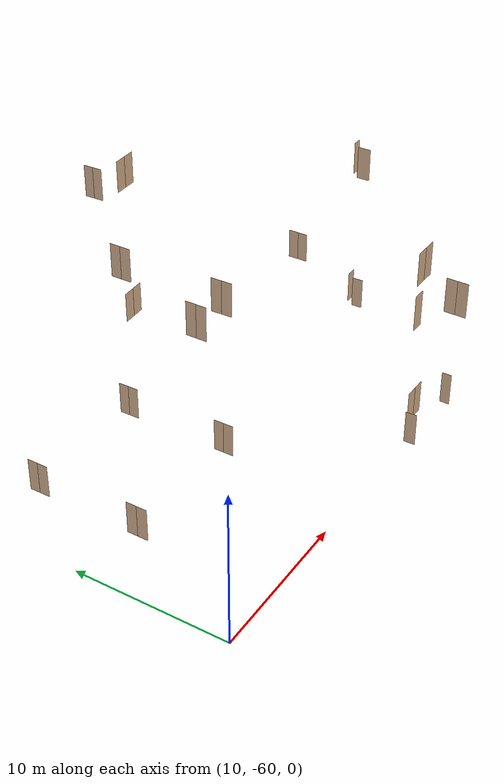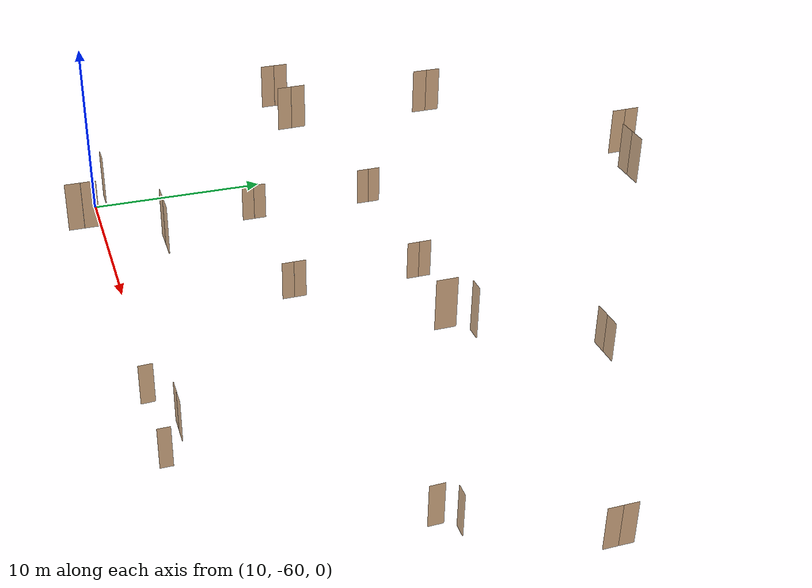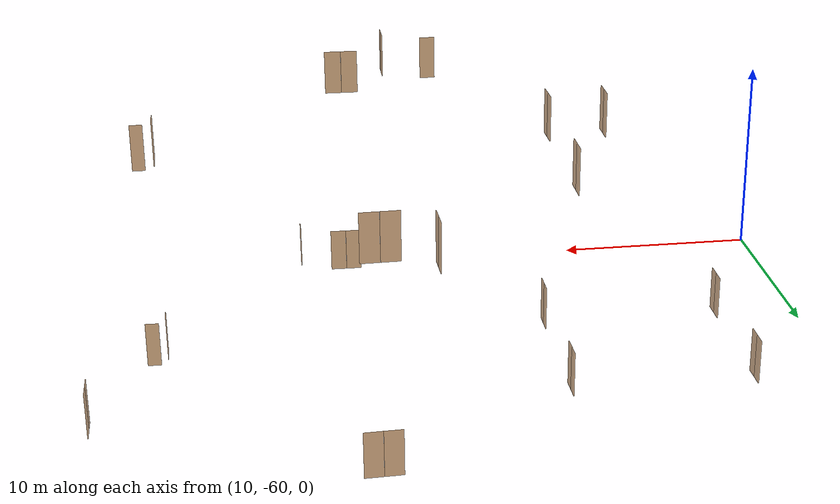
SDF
<sdf version="1.7">
 <world name="sim_world">
  <model name="door14">
   <pose>29.74922429639038 -60.3268375047855 0.0 0 0 1.6107948883778511</pose>
   <link name="right">
    <pose>0 0 1.11 0 0 0</pose>
    <visual name="right_visual">
     <geometry><box><size>0.7125942527000033 0.03 2.2</size></box></geometry>
     <material>
      <ambient>0.5 0.25 0 0.6</ambient>
      <diffuse>0.5 0.25 0 0.6</diffuse>
      <pbr><metal><metalness>0.0</metalness></metal></pbr>
     </material>
    </visual>
    <collision name="right_collision">
     <geometry><box><size>0.7125942527000033 0.03 2.2</size></box></geometry>
     <surface><contact><collide_bitmask>0x02</collide_bitmask></contact></surface>
    </collision>
    <inertial>
     <mass>50.0</mass>
     <inertia><ixx>20.17041666666667</ixx><iyy>22.282460704087825</iyy><izz>2.119544037421151</izz></inertia>
    </inertial>
   </link>
   <joint name="right_joint" type="revolute">
    <parent>world</parent>
    <child>right</child>
    <axis><xyz>0 0 1</xyz><limit><lower>0</lower><upper>1.57</upper></limit></axis>
    <pose>0.36129712635000166 0 0 0 0 0</pose>
   </joint>
   <plugin name="register_component" filename="libregister_component.so">
    <component name="Door">
     <v_max_door>0.5</v_max_door>
     <a_max_door>0.3</a_max_door>
     <a_nom_door>0.15</a_nom_door>
     <dx_min_door>0.01</dx_min_door>
     <f_max_door>500.0</f_max_door>
     <ros_interface>true</ros_interface>
     <door name="door14" type="SwingDoor" left_joint_name="empty_joint" right_joint_name="right_joint"/>
    </component>
   </plugin>
  </model>
  <model name="door17_end">
   <pose>32.24229599247289 -59.333746953176124 0.0 0 0 3.129395427821512</pose>
   <link name="right">
    <pose>0.40445562780894295 0 1.11 0 0 0</pose>
    <visual name="right_visual">
     <geometry><box><size>0.7989112556178859 0.03 2.2</size></box></geometry>
     <material>
      <ambient>0.5 0.25 0 0.6</ambient>
      <diffuse>0.5 0.25 0 0.6</diffuse>
      <pbr><metal><metalness>0.0</metalness></metal></pbr>
     </material>
    </visual>
    <collision name="right_collision">
     <geometry><box><size>0.7989112556178859 0.03 2.2</size></box></geometry>
     <surface><contact><collide_bitmask>0x02</collide_bitmask></contact></surface>
    </collision>
    <inertial>
     <mass>50.0</mass>
     <inertia><ixx>20.17041666666667</ixx><iyy>22.826079976470616</iyy><izz>2.663163309803946</izz></inertia>
    </inertial>
   </link>
   <joint name="right_joint" type="revolute">
    <parent>world</parent>
    <child>right</child>
    <axis><xyz>0 0 1</xyz><limit><lower>0</lower><upper>1.57</upper></limit></axis>
    <pose>0.40445562780894295 0 0 0 0 0</pose>
   </joint>
   <link name="left">
    <pose>-0.40445562780894295 0 1.11 0 0 0</pose>
    <visual name="left_visual">
     <geometry><box><size>0.7989112556178859 0.03 2.2</size></box></geometry>
     <material>
      <ambient>0.5 0.25 0 0.6</ambient>
      <diffuse>0.5 0.25 0 0.6</diffuse>
      <pbr><metal><metalness>0.0</metalness></metal></pbr>
     </material>
    </visual>
    <collision name="left_collision">
     <geometry><box><size>0.7989112556178859 0.03 2.2</size></box></geometry>
     <surface><contact><collide_bitmask>0x02</collide_bitmask></contact></surface>
    </collision>
    <inertial>
     <mass>50.0</mass>
     <inertia><ixx>20.17041666666667</ixx><iyy>22.826079976470616</iyy><izz>2.663163309803946</izz></inertia>
    </inertial>
   </link>
   <joint name="left_joint" type="revolute">
    <parent>world</parent>
    <child>left</child>
    <axis><xyz>0 0 1</xyz><limit><lower>-1.57</lower><upper>0</upper></limit></axis>
    <pose>-0.40445562780894295 0 0 0 0 0</pose>
   </joint>
   <plugin name="register_component" filename="libregister_component.so">
    <component name="Door">
     <v_max_door>0.5</v_max_door>
     <a_max_door>0.3</a_max_door>
     <a_nom_door>0.15</a_nom_door>
     <dx_min_door>0.01</dx_min_door>
     <f_max_door>500.0</f_max_door>
     <ros_interface>true</ros_interface>
     <door name="door17_end" type="DoubleSwingDoor" left_joint_name="left_joint" right_joint_name="right_joint"/>
    </component>
   </plugin>
  </model>
  <model name="door15">
   <pose>34.61065496626591 -60.36628744755054 0.0 0 0 1.570095261290011</pose>
   <link name="right">
    <pose>0 0 1.11 0 0 0</pose>
    <visual name="right_visual">
     <geometry><box><size>0.6306612393383593 0.03 2.2</size></box></geometry>
     <material>
      <ambient>0.5 0.25 0 0.6</ambient>
      <diffuse>0.5 0.25 0 0.6</diffuse>
      <pbr><metal><metalness>0.0</metalness></metal></pbr>
     </material>
    </visual>
    <collision name="right_collision">
     <geometry><box><size>0.6306612393383593 0.03 2.2</size></box></geometry>
     <surface><contact><collide_bitmask>0x02</collide_bitmask></contact></surface>
    </collision>
    <inertial>
     <mass>50.0</mass>
     <inertia><ixx>20.17041666666667</ixx><iyy>21.82388999501582</iyy><izz>1.6609733283491472</izz></inertia>
    </inertial>
   </link>
   <joint name="right_joint" type="revolute">
    <parent>world</parent>
    <child>right</child>
    <axis><xyz>0 0 -1</xyz><limit><lower>0</lower><upper>1.57</upper></limit></axis>
    <pose>0.32033061966917964 0 0 0 0 0</pose>
   </joint>
   <plugin name="register_component" filename="libregister_component.so">
    <component name="Door">
     <v_max_door>0.5</v_max_door>
     <a_max_door>0.3</a_max_door>
     <a_nom_door>0.15</a_nom_door>
     <dx_min_door>0.01</dx_min_door>
     <f_max_door>500.0</f_max_door>
     <ros_interface>true</ros_interface>
     <door name="door15" type="SwingDoor" left_joint_name="empty_joint" right_joint_name="right_joint"/>
    </component>
   </plugin>
  </model>
  <model name="door20">
   <pose>22.9317950981023 -44.21380406983128 0.0 0 0 1.5841898704715496</pose>
   <link name="right">
    <pose>0.33703155230400345 0 1.11 0 0 0</pose>
    <visual name="right_visual">
     <geometry><box><size>0.6640631046080069 0.03 2.2</size></box></geometry>
     <material>
      <ambient>0.5 0.25 0 0.6</ambient>
      <diffuse>0.5 0.25 0 0.6</diffuse>
      <pbr><metal><metalness>0.0</metalness></metal></pbr>
     </material>
    </visual>
    <collision name="right_collision">
     <geometry><box><size>0.6640631046080069 0.03 2.2</size></box></geometry>
     <surface><contact><collide_bitmask>0x02</collide_bitmask></contact></surface>
    </collision>
    <inertial>
     <mass>50.0</mass>
     <inertia><ixx>20.17041666666667</ixx><iyy>22.004082528756776</iyy><izz>1.841165862090103</izz></inertia>
    </inertial>
   </link>
   <joint name="right_joint" type="revolute">
    <parent>world</parent>
    <child>right</child>
    <axis><xyz>0 0 -1</xyz><limit><lower>0</lower><upper>1.57</upper></limit></axis>
    <pose>0.33703155230400345 0 0 0 0 0</pose>
   </joint>
   <link name="left">
    <pose>-0.33703155230400345 0 1.11 0 0 0</pose>
    <visual name="left_visual">
     <geometry><box><size>0.6640631046080069 0.03 2.2</size></box></geometry>
     <material>
      <ambient>0.5 0.25 0 0.6</ambient>
      <diffuse>0.5 0.25 0 0.6</diffuse>
      <pbr><metal><metalness>0.0</metalness></metal></pbr>
     </material>
    </visual>
    <collision name="left_collision">
     <geometry><box><size>0.6640631046080069 0.03 2.2</size></box></geometry>
     <surface><contact><collide_bitmask>0x02</collide_bitmask></contact></surface>
    </collision>
    <inertial>
     <mass>50.0</mass>
     <inertia><ixx>20.17041666666667</ixx><iyy>22.004082528756776</iyy><izz>1.841165862090103</izz></inertia>
    </inertial>
   </link>
   <joint name="left_joint" type="revolute">
    <parent>world</parent>
    <child>left</child>
    <axis><xyz>0 0 -1</xyz><limit><lower>-1.57</lower><upper>0</upper></limit></axis>
    <pose>-0.33703155230400345 0 0 0 0 0</pose>
   </joint>
   <plugin name="register_component" filename="libregister_component.so">
    <component name="Door">
     <v_max_door>0.5</v_max_door>
     <a_max_door>0.3</a_max_door>
     <a_nom_door>0.15</a_nom_door>
     <dx_min_door>0.01</dx_min_door>
     <f_max_door>500.0</f_max_door>
     <ros_interface>true</ros_interface>
     <door name="door20" type="DoubleSwingDoor" left_joint_name="left_joint" right_joint_name="right_joint"/>
    </component>
   </plugin>
  </model>
  <model name="door21_end">
   <pose>22.930657262940954 -51.23370804077758 0.0 0 0 1.5724148541161644</pose>
   <link name="right">
    <pose>0.3283781605271934 0 1.11 0 0 0</pose>
    <visual name="right_visual">
     <geometry><box><size>0.6467563210543867 0.03 2.2</size></box></geometry>
     <material>
      <ambient>0.5 0.25 0 0.6</ambient>
      <diffuse>0.5 0.25 0 0.6</diffuse>
      <pbr><metal><metalness>0.0</metalness></metal></pbr>
     </material>
    </visual>
    <collision name="right_collision">
     <geometry><box><size>0.6467563210543867 0.03 2.2</size></box></geometry>
     <surface><contact><collide_bitmask>0x02</collide_bitmask></contact></surface>
    </collision>
    <inertial>
     <mass>50.0</mass>
     <inertia><ixx>20.17041666666667</ixx><iyy>21.909557245099194</iyy><izz>1.746640578432521</izz></inertia>
    </inertial>
   </link>
   <joint name="right_joint" type="revolute">
    <parent>world</parent>
    <child>right</child>
    <axis><xyz>0 0 -1</xyz><limit><lower>0</lower><upper>1.57</upper></limit></axis>
    <pose>0.3283781605271934 0 0 0 0 0</pose>
   </joint>
   <link name="left">
    <pose>-0.3283781605271934 0 1.11 0 0 0</pose>
    <visual name="left_visual">
     <geometry><box><size>0.6467563210543867 0.03 2.2</size></box></geometry>
     <material>
      <ambient>0.5 0.25 0 0.6</ambient>
      <diffuse>0.5 0.25 0 0.6</diffuse>
      <pbr><metal><metalness>0.0</metalness></metal></pbr>
     </material>
    </visual>
    <collision name="left_collision">
     <geometry><box><size>0.6467563210543867 0.03 2.2</size></box></geometry>
     <surface><contact><collide_bitmask>0x02</collide_bitmask></contact></surface>
    </collision>
    <inertial>
     <mass>50.0</mass>
     <inertia><ixx>20.17041666666667</ixx><iyy>21.909557245099194</iyy><izz>1.746640578432521</izz></inertia>
    </inertial>
   </link>
   <joint name="left_joint" type="revolute">
    <parent>world</parent>
    <child>left</child>
    <axis><xyz>0 0 -1</xyz><limit><lower>-1.57</lower><upper>0</upper></limit></axis>
    <pose>-0.3283781605271934 0 0 0 0 0</pose>
   </joint>
   <plugin name="register_component" filename="libregister_component.so">
    <component name="Door">
     <v_max_door>0.5</v_max_door>
     <a_max_door>0.3</a_max_door>
     <a_nom_door>0.15</a_nom_door>
     <dx_min_door>0.01</dx_min_door>
     <f_max_door>500.0</f_max_door>
     <ros_interface>true</ros_interface>
     <door name="door21_end" type="DoubleSwingDoor" left_joint_name="left_joint" right_joint_name="right_joint"/>
    </component>
   </plugin>
  </model>
  <model name="door19">
   <pose>14.084737459250439 -51.22706068799289 0.0 0 0 1.5709468288255377</pose>
   <link name="right">
    <pose>0.3481700775569965 0 1.11 0 0 0</pose>
    <visual name="right_visual">
     <geometry><box><size>0.686340155113993 0.03 2.2</size></box></geometry>
     <material>
      <ambient>0.5 0.25 0 0.6</ambient>
      <diffuse>0.5 0.25 0 0.6</diffuse>
      <pbr><metal><metalness>0.0</metalness></metal></pbr>
     </material>
    </visual>
    <collision name="right_collision">
     <geometry><box><size>0.686340155113993 0.03 2.2</size></box></geometry>
     <surface><contact><collide_bitmask>0x02</collide_bitmask></contact></surface>
    </collision>
    <inertial>
     <mass>50.0</mass>
     <inertia><ixx>20.17041666666667</ixx><iyy>22.129428368841253</iyy><izz>1.9665117021745837</izz></inertia>
    </inertial>
   </link>
   <joint name="right_joint" type="revolute">
    <parent>world</parent>
    <child>right</child>
    <axis><xyz>0 0 -1</xyz><limit><lower>0</lower><upper>1.57</upper></limit></axis>
    <pose>0.3481700775569965 0 0 0 0 0</pose>
   </joint>
   <link name="left">
    <pose>-0.3481700775569965 0 1.11 0 0 0</pose>
    <visual name="left_visual">
     <geometry><box><size>0.686340155113993 0.03 2.2</size></box></geometry>
     <material>
      <ambient>0.5 0.25 0 0.6</ambient>
      <diffuse>0.5 0.25 0 0.6</diffuse>
      <pbr><metal><metalness>0.0</metalness></metal></pbr>
     </material>
    </visual>
    <collision name="left_collision">
     <geometry><box><size>0.686340155113993 0.03 2.2</size></box></geometry>
     <surface><contact><collide_bitmask>0x02</collide_bitmask></contact></surface>
    </collision>
    <inertial>
     <mass>50.0</mass>
     <inertia><ixx>20.17041666666667</ixx><iyy>22.129428368841253</iyy><izz>1.9665117021745837</izz></inertia>
    </inertial>
   </link>
   <joint name="left_joint" type="revolute">
    <parent>world</parent>
    <child>left</child>
    <axis><xyz>0 0 -1</xyz><limit><lower>-1.57</lower><upper>0</upper></limit></axis>
    <pose>-0.3481700775569965 0 0 0 0 0</pose>
   </joint>
   <plugin name="register_component" filename="libregister_component.so">
    <component name="Door">
     <v_max_door>0.5</v_max_door>
     <a_max_door>0.3</a_max_door>
     <a_nom_door>0.15</a_nom_door>
     <dx_min_door>0.01</dx_min_door>
     <f_max_door>500.0</f_max_door>
     <ros_interface>true</ros_interface>
     <door name="door19" type="DoubleSwingDoor" left_joint_name="left_joint" right_joint_name="right_joint"/>
    </component>
   </plugin>
  </model>
  <model name="door18">
   <pose>14.096969187234894 -44.20467144550996 0.0 0 0 1.5759858748518007</pose>
   <link name="right">
    <pose>0.34330895403409933 0 1.11 0 0 0</pose>
    <visual name="right_visual">
     <geometry><box><size>0.6766179080681987 0.03 2.2</size></box></geometry>
     <material>
      <ambient>0.5 0.25 0 0.6</ambient>
      <diffuse>0.5 0.25 0 0.6</diffuse>
      <pbr><metal><metalness>0.0</metalness></metal></pbr>
     </material>
    </visual>
    <collision name="right_collision">
     <geometry><box><size>0.6766179080681987 0.03 2.2</size></box></geometry>
     <surface><contact><collide_bitmask>0x02</collide_bitmask></contact></surface>
    </collision>
    <inertial>
     <mass>50.0</mass>
     <inertia><ixx>20.17041666666667</ixx><iyy>22.074215806327445</iyy><izz>1.9112991396607724</izz></inertia>
    </inertial>
   </link>
   <joint name="right_joint" type="revolute">
    <parent>world</parent>
    <child>right</child>
    <axis><xyz>0 0 -1</xyz><limit><lower>0</lower><upper>1.57</upper></limit></axis>
    <pose>0.34330895403409933 0 0 0 0 0</pose>
   </joint>
   <link name="left">
    <pose>-0.34330895403409933 0 1.11 0 0 0</pose>
    <visual name="left_visual">
     <geometry><box><size>0.6766179080681987 0.03 2.2</size></box></geometry>
     <material>
      <ambient>0.5 0.25 0 0.6</ambient>
      <diffuse>0.5 0.25 0 0.6</diffuse>
      <pbr><metal><metalness>0.0</metalness></metal></pbr>
     </material>
    </visual>
    <collision name="left_collision">
     <geometry><box><size>0.6766179080681987 0.03 2.2</size></box></geometry>
     <surface><contact><collide_bitmask>0x02</collide_bitmask></contact></surface>
    </collision>
    <inertial>
     <mass>50.0</mass>
     <inertia><ixx>20.17041666666667</ixx><iyy>22.074215806327445</iyy><izz>1.9112991396607724</izz></inertia>
    </inertial>
   </link>
   <joint name="left_joint" type="revolute">
    <parent>world</parent>
    <child>left</child>
    <axis><xyz>0 0 -1</xyz><limit><lower>-1.57</lower><upper>0</upper></limit></axis>
    <pose>-0.34330895403409933 0 0 0 0 0</pose>
   </joint>
   <plugin name="register_component" filename="libregister_component.so">
    <component name="Door">
     <v_max_door>0.5</v_max_door>
     <a_max_door>0.3</a_max_door>
     <a_nom_door>0.15</a_nom_door>
     <dx_min_door>0.01</dx_min_door>
     <f_max_door>500.0</f_max_door>
     <ros_interface>true</ros_interface>
     <door name="door18" type="DoubleSwingDoor" left_joint_name="left_joint" right_joint_name="right_joint"/>
    </component>
   </plugin>
  </model>
  <model name="door22">
   <pose>42.20187196032947 -49.40029627948463 0.0 0 0 3.127897356564702</pose>
   <link name="right">
    <pose>0 0 1.11 0 0 0</pose>
    <visual name="right_visual">
     <geometry><box><size>0.6524917930102326 0.03 2.2</size></box></geometry>
     <material>
      <ambient>0.5 0.25 0 0.6</ambient>
      <diffuse>0.5 0.25 0 0.6</diffuse>
      <pbr><metal><metalness>0.0</metalness></metal></pbr>
     </material>
    </visual>
    <collision name="right_collision">
     <geometry><box><size>0.6524917930102326 0.03 2.2</size></box></geometry>
     <surface><contact><collide_bitmask>0x02</collide_bitmask></contact></surface>
    </collision>
    <inertial>
     <mass>50.0</mass>
     <inertia><ixx>20.17041666666667</ixx><iyy>21.940606416440456</iyy><izz>1.7776897497737847</izz></inertia>
    </inertial>
   </link>
   <joint name="right_joint" type="revolute">
    <parent>world</parent>
    <child>right</child>
    <axis><xyz>0 0 1</xyz><limit><lower>0</lower><upper>1.57</upper></limit></axis>
    <pose>0.3312458965051163 0 0 0 0 0</pose>
   </joint>
   <plugin name="register_component" filename="libregister_component.so">
    <component name="Door">
     <v_max_door>0.5</v_max_door>
     <a_max_door>0.3</a_max_door>
     <a_nom_door>0.15</a_nom_door>
     <dx_min_door>0.01</dx_min_door>
     <f_max_door>500.0</f_max_door>
     <ros_interface>true</ros_interface>
     <door name="door22" type="SwingDoor" left_joint_name="empty_joint" right_joint_name="right_joint"/>
    </component>
   </plugin>
  </model>
  <model name="door23_end">
   <pose>41.56986441426364 -50.243402191010446 0.0 0 0 1.5988323440812358</pose>
   <link name="right">
    <pose>0 0 1.11 0 0 0</pose>
    <visual name="right_visual">
     <geometry><box><size>0.7387801931299594 0.03 2.2</size></box></geometry>
     <material>
      <ambient>0.5 0.25 0 0.6</ambient>
      <diffuse>0.5 0.25 0 0.6</diffuse>
      <pbr><metal><metalness>0.0</metalness></metal></pbr>
     </material>
    </visual>
    <collision name="right_collision">
     <geometry><box><size>0.7387801931299594 0.03 2.2</size></box></geometry>
     <surface><contact><collide_bitmask>0x02</collide_bitmask></contact></surface>
    </collision>
    <inertial>
     <mass>50.0</mass>
     <inertia><ixx>20.17041666666667</ixx><iyy>22.44081739067142</iyy><izz>2.2779007240047506</izz></inertia>
    </inertial>
   </link>
   <joint name="right_joint" type="revolute">
    <parent>world</parent>
    <child>right</child>
    <axis><xyz>0 0 1</xyz><limit><lower>0</lower><upper>1.57</upper></limit></axis>
    <pose>0.3743900965649797 0 0 0 0 0</pose>
   </joint>
   <plugin name="register_component" filename="libregister_component.so">
    <component name="Door">
     <v_max_door>0.5</v_max_door>
     <a_max_door>0.3</a_max_door>
     <a_nom_door>0.15</a_nom_door>
     <dx_min_door>0.01</dx_min_door>
     <f_max_door>500.0</f_max_door>
     <ros_interface>true</ros_interface>
     <door name="door23_end" type="SwingDoor" left_joint_name="empty_joint" right_joint_name="right_joint"/>
    </component>
   </plugin>
  </model>
  <model name="door34_end">
   <pose>32.27717962307727 -37.76471906199796 0.0 0 0 -3.1073071053219796</pose>
   <link name="right">
    <pose>0.4385039004640139 0 1.11 0 0 0</pose>
    <visual name="right_visual">
     <geometry><box><size>0.8670078009280278 0.03 2.2</size></box></geometry>
     <material>
      <ambient>0.5 0.25 0 0.6</ambient>
      <diffuse>0.5 0.25 0 0.6</diffuse>
      <pbr><metal><metalness>0.0</metalness></metal></pbr>
     </material>
    </visual>
    <collision name="right_collision">
     <geometry><box><size>0.8670078009280278 0.03 2.2</size></box></geometry>
     <surface><contact><collide_bitmask>0x02</collide_bitmask></contact></surface>
    </collision>
    <inertial>
     <mass>50.0</mass>
     <inertia><ixx>20.17041666666667</ixx><iyy>23.29876052862523</iyy><izz>3.135843861958561</izz></inertia>
    </inertial>
   </link>
   <joint name="right_joint" type="revolute">
    <parent>world</parent>
    <child>right</child>
    <axis><xyz>0 0 -1</xyz><limit><lower>0</lower><upper>1.57</upper></limit></axis>
    <pose>0.4385039004640139 0 0 0 0 0</pose>
   </joint>
   <link name="left">
    <pose>-0.4385039004640139 0 1.11 0 0 0</pose>
    <visual name="left_visual">
     <geometry><box><size>0.8670078009280278 0.03 2.2</size></box></geometry>
     <material>
      <ambient>0.5 0.25 0 0.6</ambient>
      <diffuse>0.5 0.25 0 0.6</diffuse>
      <pbr><metal><metalness>0.0</metalness></metal></pbr>
     </material>
    </visual>
    <collision name="left_collision">
     <geometry><box><size>0.8670078009280278 0.03 2.2</size></box></geometry>
     <surface><contact><collide_bitmask>0x02</collide_bitmask></contact></surface>
    </collision>
    <inertial>
     <mass>50.0</mass>
     <inertia><ixx>20.17041666666667</ixx><iyy>23.29876052862523</iyy><izz>3.135843861958561</izz></inertia>
    </inertial>
   </link>
   <joint name="left_joint" type="revolute">
    <parent>world</parent>
    <child>left</child>
    <axis><xyz>0 0 -1</xyz><limit><lower>-1.57</lower><upper>0</upper></limit></axis>
    <pose>-0.4385039004640139 0 0 0 0 0</pose>
   </joint>
   <plugin name="register_component" filename="libregister_component.so">
    <component name="Door">
     <v_max_door>0.5</v_max_door>
     <a_max_door>0.3</a_max_door>
     <a_nom_door>0.15</a_nom_door>
     <dx_min_door>0.01</dx_min_door>
     <f_max_door>500.0</f_max_door>
     <ros_interface>true</ros_interface>
     <door name="door34_end" type="DoubleSwingDoor" left_joint_name="left_joint" right_joint_name="right_joint"/>
    </component>
   </plugin>
  </model>
  <model name="door35">
   <pose>44.947632891322165 -43.476876144677256 0.0 0 0 1.5807739370104015</pose>
   <link name="right">
    <pose>0.3631297209872621 0 1.11 0 0 0</pose>
    <visual name="right_visual">
     <geometry><box><size>0.7162594419745242 0.03 2.2</size></box></geometry>
     <material>
      <ambient>0.5 0.25 0 0.6</ambient>
      <diffuse>0.5 0.25 0 0.6</diffuse>
      <pbr><metal><metalness>0.0</metalness></metal></pbr>
     </material>
    </visual>
    <collision name="right_collision">
     <geometry><box><size>0.7162594419745242 0.03 2.2</size></box></geometry>
     <surface><contact><collide_bitmask>0x02</collide_bitmask></contact></surface>
    </collision>
    <inertial>
     <mass>50.0</mass>
     <inertia><ixx>20.17041666666667</ixx><iyy>22.304281617573576</iyy><izz>2.1413649509069037</izz></inertia>
    </inertial>
   </link>
   <joint name="right_joint" type="revolute">
    <parent>world</parent>
    <child>right</child>
    <axis><xyz>0 0 1</xyz><limit><lower>0</lower><upper>1.57</upper></limit></axis>
    <pose>0.3631297209872621 0 0 0 0 0</pose>
   </joint>
   <link name="left">
    <pose>-0.3631297209872621 0 1.11 0 0 0</pose>
    <visual name="left_visual">
     <geometry><box><size>0.7162594419745242 0.03 2.2</size></box></geometry>
     <material>
      <ambient>0.5 0.25 0 0.6</ambient>
      <diffuse>0.5 0.25 0 0.6</diffuse>
      <pbr><metal><metalness>0.0</metalness></metal></pbr>
     </material>
    </visual>
    <collision name="left_collision">
     <geometry><box><size>0.7162594419745242 0.03 2.2</size></box></geometry>
     <surface><contact><collide_bitmask>0x02</collide_bitmask></contact></surface>
    </collision>
    <inertial>
     <mass>50.0</mass>
     <inertia><ixx>20.17041666666667</ixx><iyy>22.304281617573576</iyy><izz>2.1413649509069037</izz></inertia>
    </inertial>
   </link>
   <joint name="left_joint" type="revolute">
    <parent>world</parent>
    <child>left</child>
    <axis><xyz>0 0 1</xyz><limit><lower>-1.57</lower><upper>0</upper></limit></axis>
    <pose>-0.3631297209872621 0 0 0 0 0</pose>
   </joint>
   <plugin name="register_component" filename="libregister_component.so">
    <component name="Door">
     <v_max_door>0.5</v_max_door>
     <a_max_door>0.3</a_max_door>
     <a_nom_door>0.15</a_nom_door>
     <dx_min_door>0.01</dx_min_door>
     <f_max_door>500.0</f_max_door>
     <ros_interface>true</ros_interface>
     <door name="door35" type="DoubleSwingDoor" left_joint_name="left_joint" right_joint_name="right_joint"/>
    </component>
   </plugin>
  </model>
  <model name="N1_door9">
   <pose>29.870763947895952 -62.389399594153176 10.0 0 0 1.5673760977251567</pose>
   <link name="right">
    <pose>0.33577057026473905 0 1.11 0 0 0</pose>
    <visual name="right_visual">
     <geometry><box><size>0.6615411405294781 0.03 2.2</size></box></geometry>
     <material>
      <ambient>0.5 0.25 0 0.6</ambient>
      <diffuse>0.5 0.25 0 0.6</diffuse>
      <pbr><metal><metalness>0.0</metalness></metal></pbr>
     </material>
    </visual>
    <collision name="right_collision">
     <geometry><box><size>0.6615411405294781 0.03 2.2</size></box></geometry>
     <surface><contact><collide_bitmask>0x02</collide_bitmask></contact></surface>
    </collision>
    <inertial>
     <mass>50.0</mass>
     <inertia><ixx>20.17041666666667</ixx><iyy>21.99015283588768</iyy><izz>1.8272361692210113</izz></inertia>
    </inertial>
   </link>
   <joint name="right_joint" type="revolute">
    <parent>world</parent>
    <child>right</child>
    <axis><xyz>0 0 1</xyz><limit><lower>0</lower><upper>1.57</upper></limit></axis>
    <pose>0.33577057026473905 0 0 0 0 0</pose>
   </joint>
   <link name="left">
    <pose>-0.33577057026473905 0 1.11 0 0 0</pose>
    <visual name="left_visual">
     <geometry><box><size>0.6615411405294781 0.03 2.2</size></box></geometry>
     <material>
      <ambient>0.5 0.25 0 0.6</ambient>
      <diffuse>0.5 0.25 0 0.6</diffuse>
      <pbr><metal><metalness>0.0</metalness></metal></pbr>
     </material>
    </visual>
    <collision name="left_collision">
     <geometry><box><size>0.6615411405294781 0.03 2.2</size></box></geometry>
     <surface><contact><collide_bitmask>0x02</collide_bitmask></contact></surface>
    </collision>
    <inertial>
     <mass>50.0</mass>
     <inertia><ixx>20.17041666666667</ixx><iyy>21.99015283588768</iyy><izz>1.8272361692210113</izz></inertia>
    </inertial>
   </link>
   <joint name="left_joint" type="revolute">
    <parent>world</parent>
    <child>left</child>
    <axis><xyz>0 0 1</xyz><limit><lower>-1.57</lower><upper>0</upper></limit></axis>
    <pose>-0.33577057026473905 0 0 0 0 0</pose>
   </joint>
   <plugin name="register_component" filename="libregister_component.so">
    <component name="Door">
     <v_max_door>0.5</v_max_door>
     <a_max_door>0.3</a_max_door>
     <a_nom_door>0.15</a_nom_door>
     <dx_min_door>0.01</dx_min_door>
     <f_max_door>500.0</f_max_door>
     <ros_interface>true</ros_interface>
     <door name="N1_door9" type="DoubleSwingDoor" left_joint_name="left_joint" right_joint_name="right_joint"/>
    </component>
   </plugin>
  </model>
  <model name="N1_door8">
   <pose>27.549587263343593 -61.17045327454301 10.0 0 0 3.1306228913974343</pose>
   <link name="right">
    <pose>0 0 1.11 0 0 0</pose>
    <visual name="right_visual">
     <geometry><box><size>0.7729287977846465 0.03 2.2</size></box></geometry>
     <material>
      <ambient>0.5 0.25 0 0.6</ambient>
      <diffuse>0.5 0.25 0 0.6</diffuse>
      <pbr><metal><metalness>0.0</metalness></metal></pbr>
     </material>
    </visual>
    <collision name="right_collision">
     <geometry><box><size>0.7729287977846465 0.03 2.2</size></box></geometry>
     <surface><contact><collide_bitmask>0x02</collide_bitmask></contact></surface>
    </collision>
    <inertial>
     <mass>50.0</mass>
     <inertia><ixx>20.17041666666667</ixx><iyy>22.655912193520084</iyy><izz>2.4929955268534125</izz></inertia>
    </inertial>
   </link>
   <joint name="right_joint" type="revolute">
    <parent>world</parent>
    <child>right</child>
    <axis><xyz>0 0 1</xyz><limit><lower>0</lower><upper>1.57</upper></limit></axis>
    <pose>0.39146439889232326 0 0 0 0 0</pose>
   </joint>
   <plugin name="register_component" filename="libregister_component.so">
    <component name="Door">
     <v_max_door>0.5</v_max_door>
     <a_max_door>0.3</a_max_door>
     <a_nom_door>0.15</a_nom_door>
     <dx_min_door>0.01</dx_min_door>
     <f_max_door>500.0</f_max_door>
     <ros_interface>true</ros_interface>
     <door name="N1_door8" type="SwingDoor" left_joint_name="empty_joint" right_joint_name="right_joint"/>
    </component>
   </plugin>
  </model>
  <model name="N1_door11_end">
   <pose>32.23540077722831 -59.29035023220505 10.0 0 0 3.1294586072716837</pose>
   <link name="right">
    <pose>0.4165965806127743 0 1.11 0 0 0</pose>
    <visual name="right_visual">
     <geometry><box><size>0.8231931612255486 0.03 2.2</size></box></geometry>
     <material>
      <ambient>0.5 0.25 0 0.6</ambient>
      <diffuse>0.5 0.25 0 0.6</diffuse>
      <pbr><metal><metalness>0.0</metalness></metal></pbr>
     </material>
    </visual>
    <collision name="right_collision">
     <geometry><box><size>0.8231931612255486 0.03 2.2</size></box></geometry>
     <surface><contact><collide_bitmask>0x02</collide_bitmask></contact></surface>
    </collision>
    <inertial>
     <mass>50.0</mass>
     <inertia><ixx>20.17041666666667</ixx><iyy>22.990195752868804</iyy><izz>2.827279086202134</izz></inertia>
    </inertial>
   </link>
   <joint name="right_joint" type="revolute">
    <parent>world</parent>
    <child>right</child>
    <axis><xyz>0 0 1</xyz><limit><lower>0</lower><upper>1.57</upper></limit></axis>
    <pose>0.4165965806127743 0 0 0 0 0</pose>
   </joint>
   <link name="left">
    <pose>-0.4165965806127743 0 1.11 0 0 0</pose>
    <visual name="left_visual">
     <geometry><box><size>0.8231931612255486 0.03 2.2</size></box></geometry>
     <material>
      <ambient>0.5 0.25 0 0.6</ambient>
      <diffuse>0.5 0.25 0 0.6</diffuse>
      <pbr><metal><metalness>0.0</metalness></metal></pbr>
     </material>
    </visual>
    <collision name="left_collision">
     <geometry><box><size>0.8231931612255486 0.03 2.2</size></box></geometry>
     <surface><contact><collide_bitmask>0x02</collide_bitmask></contact></surface>
    </collision>
    <inertial>
     <mass>50.0</mass>
     <inertia><ixx>20.17041666666667</ixx><iyy>22.990195752868804</iyy><izz>2.827279086202134</izz></inertia>
    </inertial>
   </link>
   <joint name="left_joint" type="revolute">
    <parent>world</parent>
    <child>left</child>
    <axis><xyz>0 0 1</xyz><limit><lower>-1.57</lower><upper>0</upper></limit></axis>
    <pose>-0.4165965806127743 0 0 0 0 0</pose>
   </joint>
   <plugin name="register_component" filename="libregister_component.so">
    <component name="Door">
     <v_max_door>0.5</v_max_door>
     <a_max_door>0.3</a_max_door>
     <a_nom_door>0.15</a_nom_door>
     <dx_min_door>0.01</dx_min_door>
     <f_max_door>500.0</f_max_door>
     <ros_interface>true</ros_interface>
     <door name="N1_door11_end" type="DoubleSwingDoor" left_joint_name="left_joint" right_joint_name="right_joint"/>
    </component>
   </plugin>
  </model>
  <model name="N1_door25">
   <pose>30.00390059689753 -36.839167251278006 10.0 0 0 1.5992979065213269</pose>
   <link name="right">
    <pose>0.32862162159279784 0 1.11 0 0 0</pose>
    <visual name="right_visual">
     <geometry><box><size>0.6472432431855957 0.03 2.2</size></box></geometry>
     <material>
      <ambient>0.5 0.25 0 0.6</ambient>
      <diffuse>0.5 0.25 0 0.6</diffuse>
      <pbr><metal><metalness>0.0</metalness></metal></pbr>
     </material>
    </visual>
    <collision name="right_collision">
     <geometry><box><size>0.6472432431855957 0.03 2.2</size></box></geometry>
     <surface><contact><collide_bitmask>0x02</collide_bitmask></contact></surface>
    </collision>
    <inertial>
     <mass>50.0</mass>
     <inertia><ixx>20.17041666666667</ixx><iyy>21.912182566039206</iyy><izz>1.749265899372534</izz></inertia>
    </inertial>
   </link>
   <joint name="right_joint" type="revolute">
    <parent>world</parent>
    <child>right</child>
    <axis><xyz>0 0 1</xyz><limit><lower>0</lower><upper>1.57</upper></limit></axis>
    <pose>0.32862162159279784 0 0 0 0 0</pose>
   </joint>
   <link name="left">
    <pose>-0.32862162159279784 0 1.11 0 0 0</pose>
    <visual name="left_visual">
     <geometry><box><size>0.6472432431855957 0.03 2.2</size></box></geometry>
     <material>
      <ambient>0.5 0.25 0 0.6</ambient>
      <diffuse>0.5 0.25 0 0.6</diffuse>
      <pbr><metal><metalness>0.0</metalness></metal></pbr>
     </material>
    </visual>
    <collision name="left_collision">
     <geometry><box><size>0.6472432431855957 0.03 2.2</size></box></geometry>
     <surface><contact><collide_bitmask>0x02</collide_bitmask></contact></surface>
    </collision>
    <inertial>
     <mass>50.0</mass>
     <inertia><ixx>20.17041666666667</ixx><iyy>21.912182566039206</iyy><izz>1.749265899372534</izz></inertia>
    </inertial>
   </link>
   <joint name="left_joint" type="revolute">
    <parent>world</parent>
    <child>left</child>
    <axis><xyz>0 0 1</xyz><limit><lower>-1.57</lower><upper>0</upper></limit></axis>
    <pose>-0.32862162159279784 0 0 0 0 0</pose>
   </joint>
   <plugin name="register_component" filename="libregister_component.so">
    <component name="Door">
     <v_max_door>0.5</v_max_door>
     <a_max_door>0.3</a_max_door>
     <a_nom_door>0.15</a_nom_door>
     <dx_min_door>0.01</dx_min_door>
     <f_max_door>500.0</f_max_door>
     <ros_interface>true</ros_interface>
     <door name="N1_door25" type="DoubleSwingDoor" left_joint_name="left_joint" right_joint_name="right_joint"/>
    </component>
   </plugin>
  </model>
  <model name="N1_door27_end">
   <pose>32.255697078795194 -37.67114534240352 10.0 0 0 -3.118046072828263</pose>
   <link name="right">
    <pose>0.4256311333562787 0 1.11 0 0 0</pose>
    <visual name="right_visual">
     <geometry><box><size>0.8412622667125574 0.03 2.2</size></box></geometry>
     <material>
      <ambient>0.5 0.25 0 0.6</ambient>
      <diffuse>0.5 0.25 0 0.6</diffuse>
      <pbr><metal><metalness>0.0</metalness></metal></pbr>
     </material>
    </visual>
    <collision name="right_collision">
     <geometry><box><size>0.8412622667125574 0.03 2.2</size></box></geometry>
     <surface><contact><collide_bitmask>0x02</collide_bitmask></contact></surface>
    </collision>
    <inertial>
     <mass>50.0</mass>
     <inertia><ixx>20.17041666666667</ixx><iyy>23.115509172476465</iyy><izz>2.9525925058097924</izz></inertia>
    </inertial>
   </link>
   <joint name="right_joint" type="revolute">
    <parent>world</parent>
    <child>right</child>
    <axis><xyz>0 0 -1</xyz><limit><lower>0</lower><upper>1.57</upper></limit></axis>
    <pose>0.4256311333562787 0 0 0 0 0</pose>
   </joint>
   <link name="left">
    <pose>-0.4256311333562787 0 1.11 0 0 0</pose>
    <visual name="left_visual">
     <geometry><box><size>0.8412622667125574 0.03 2.2</size></box></geometry>
     <material>
      <ambient>0.5 0.25 0 0.6</ambient>
      <diffuse>0.5 0.25 0 0.6</diffuse>
      <pbr><metal><metalness>0.0</metalness></metal></pbr>
     </material>
    </visual>
    <collision name="left_collision">
     <geometry><box><size>0.8412622667125574 0.03 2.2</size></box></geometry>
     <surface><contact><collide_bitmask>0x02</collide_bitmask></contact></surface>
    </collision>
    <inertial>
     <mass>50.0</mass>
     <inertia><ixx>20.17041666666667</ixx><iyy>23.115509172476465</iyy><izz>2.9525925058097924</izz></inertia>
    </inertial>
   </link>
   <joint name="left_joint" type="revolute">
    <parent>world</parent>
    <child>left</child>
    <axis><xyz>0 0 -1</xyz><limit><lower>-1.57</lower><upper>0</upper></limit></axis>
    <pose>-0.4256311333562787 0 0 0 0 0</pose>
   </joint>
   <plugin name="register_component" filename="libregister_component.so">
    <component name="Door">
     <v_max_door>0.5</v_max_door>
     <a_max_door>0.3</a_max_door>
     <a_nom_door>0.15</a_nom_door>
     <dx_min_door>0.01</dx_min_door>
     <f_max_door>500.0</f_max_door>
     <ros_interface>true</ros_interface>
     <door name="N1_door27_end" type="DoubleSwingDoor" left_joint_name="left_joint" right_joint_name="right_joint"/>
    </component>
   </plugin>
  </model>
  <model name="N1_door16_end">
   <pose>22.94707105997723 -44.20558958832219 10.0 0 0 1.5766278200103285</pose>
   <link name="right">
    <pose>0.3425813667073798 0 1.11 0 0 0</pose>
    <visual name="right_visual">
     <geometry><box><size>0.6751627334147596 0.03 2.2</size></box></geometry>
     <material>
      <ambient>0.5 0.25 0 0.6</ambient>
      <diffuse>0.5 0.25 0 0.6</diffuse>
      <pbr><metal><metalness>0.0</metalness></metal></pbr>
     </material>
    </visual>
    <collision name="right_collision">
     <geometry><box><size>0.6751627334147596 0.03 2.2</size></box></geometry>
     <surface><contact><collide_bitmask>0x02</collide_bitmask></contact></surface>
    </collision>
    <inertial>
     <mass>50.0</mass>
     <inertia><ixx>20.17041666666667</ixx><iyy>22.066019652467045</iyy><izz>1.9031029858003743</izz></inertia>
    </inertial>
   </link>
   <joint name="right_joint" type="revolute">
    <parent>world</parent>
    <child>right</child>
    <axis><xyz>0 0 -1</xyz><limit><lower>0</lower><upper>1.57</upper></limit></axis>
    <pose>0.3425813667073798 0 0 0 0 0</pose>
   </joint>
   <link name="left">
    <pose>-0.3425813667073798 0 1.11 0 0 0</pose>
    <visual name="left_visual">
     <geometry><box><size>0.6751627334147596 0.03 2.2</size></box></geometry>
     <material>
      <ambient>0.5 0.25 0 0.6</ambient>
      <diffuse>0.5 0.25 0 0.6</diffuse>
      <pbr><metal><metalness>0.0</metalness></metal></pbr>
     </material>
    </visual>
    <collision name="left_collision">
     <geometry><box><size>0.6751627334147596 0.03 2.2</size></box></geometry>
     <surface><contact><collide_bitmask>0x02</collide_bitmask></contact></surface>
    </collision>
    <inertial>
     <mass>50.0</mass>
     <inertia><ixx>20.17041666666667</ixx><iyy>22.066019652467045</iyy><izz>1.9031029858003743</izz></inertia>
    </inertial>
   </link>
   <joint name="left_joint" type="revolute">
    <parent>world</parent>
    <child>left</child>
    <axis><xyz>0 0 -1</xyz><limit><lower>-1.57</lower><upper>0</upper></limit></axis>
    <pose>-0.3425813667073798 0 0 0 0 0</pose>
   </joint>
   <plugin name="register_component" filename="libregister_component.so">
    <component name="Door">
     <v_max_door>0.5</v_max_door>
     <a_max_door>0.3</a_max_door>
     <a_nom_door>0.15</a_nom_door>
     <dx_min_door>0.01</dx_min_door>
     <f_max_door>500.0</f_max_door>
     <ros_interface>true</ros_interface>
     <door name="N1_door16_end" type="DoubleSwingDoor" left_joint_name="left_joint" right_joint_name="right_joint"/>
    </component>
   </plugin>
  </model>
  <model name="N1_door14">
   <pose>20.16760108387953 -51.36334380325009 10.0 0 0 1.5761806780854126</pose>
   <link name="right">
    <pose>0.3304110361746249 0 1.11 0 0 0</pose>
    <visual name="right_visual">
     <geometry><box><size>0.6508220723492498 0.03 2.2</size></box></geometry>
     <material>
      <ambient>0.5 0.25 0 0.6</ambient>
      <diffuse>0.5 0.25 0 0.6</diffuse>
      <pbr><metal><metalness>0.0</metalness></metal></pbr>
     </material>
    </visual>
    <collision name="right_collision">
     <geometry><box><size>0.6508220723492498 0.03 2.2</size></box></geometry>
     <surface><contact><collide_bitmask>0x02</collide_bitmask></contact></surface>
    </collision>
    <inertial>
     <mass>50.0</mass>
     <inertia><ixx>20.17041666666667</ixx><iyy>21.93153904107072</iyy><izz>1.768622374404051</izz></inertia>
    </inertial>
   </link>
   <joint name="right_joint" type="revolute">
    <parent>world</parent>
    <child>right</child>
    <axis><xyz>0 0 -1</xyz><limit><lower>0</lower><upper>1.57</upper></limit></axis>
    <pose>0.3304110361746249 0 0 0 0 0</pose>
   </joint>
   <link name="left">
    <pose>-0.3304110361746249 0 1.11 0 0 0</pose>
    <visual name="left_visual">
     <geometry><box><size>0.6508220723492498 0.03 2.2</size></box></geometry>
     <material>
      <ambient>0.5 0.25 0 0.6</ambient>
      <diffuse>0.5 0.25 0 0.6</diffuse>
      <pbr><metal><metalness>0.0</metalness></metal></pbr>
     </material>
    </visual>
    <collision name="left_collision">
     <geometry><box><size>0.6508220723492498 0.03 2.2</size></box></geometry>
     <surface><contact><collide_bitmask>0x02</collide_bitmask></contact></surface>
    </collision>
    <inertial>
     <mass>50.0</mass>
     <inertia><ixx>20.17041666666667</ixx><iyy>21.93153904107072</iyy><izz>1.768622374404051</izz></inertia>
    </inertial>
   </link>
   <joint name="left_joint" type="revolute">
    <parent>world</parent>
    <child>left</child>
    <axis><xyz>0 0 -1</xyz><limit><lower>-1.57</lower><upper>0</upper></limit></axis>
    <pose>-0.3304110361746249 0 0 0 0 0</pose>
   </joint>
   <plugin name="register_component" filename="libregister_component.so">
    <component name="Door">
     <v_max_door>0.5</v_max_door>
     <a_max_door>0.3</a_max_door>
     <a_nom_door>0.15</a_nom_door>
     <dx_min_door>0.01</dx_min_door>
     <f_max_door>500.0</f_max_door>
     <ros_interface>true</ros_interface>
     <door name="N1_door14" type="DoubleSwingDoor" left_joint_name="left_joint" right_joint_name="right_joint"/>
    </component>
   </plugin>
  </model>
  <model name="N1_door15">
   <pose>22.931225085397713 -51.22099265936046 10.0 0 0 1.5976190293973156</pose>
   <link name="right">
    <pose>0.3405853078848471 0 1.11 0 0 0</pose>
    <visual name="right_visual">
     <geometry><box><size>0.6711706157696942 0.03 2.2</size></box></geometry>
     <material>
      <ambient>0.5 0.25 0 0.6</ambient>
      <diffuse>0.5 0.25 0 0.6</diffuse>
      <pbr><metal><metalness>0.0</metalness></metal></pbr>
     </material>
    </visual>
    <collision name="right_collision">
     <geometry><box><size>0.6711706157696942 0.03 2.2</size></box></geometry>
     <surface><contact><collide_bitmask>0x02</collide_bitmask></contact></surface>
    </collision>
    <inertial>
     <mass>50.0</mass>
     <inertia><ixx>20.17041666666667</ixx><iyy>22.043624981136134</iyy><izz>1.8807083144694603</izz></inertia>
    </inertial>
   </link>
   <joint name="right_joint" type="revolute">
    <parent>world</parent>
    <child>right</child>
    <axis><xyz>0 0 -1</xyz><limit><lower>0</lower><upper>1.57</upper></limit></axis>
    <pose>0.3405853078848471 0 0 0 0 0</pose>
   </joint>
   <link name="left">
    <pose>-0.3405853078848471 0 1.11 0 0 0</pose>
    <visual name="left_visual">
     <geometry><box><size>0.6711706157696942 0.03 2.2</size></box></geometry>
     <material>
      <ambient>0.5 0.25 0 0.6</ambient>
      <diffuse>0.5 0.25 0 0.6</diffuse>
      <pbr><metal><metalness>0.0</metalness></metal></pbr>
     </material>
    </visual>
    <collision name="left_collision">
     <geometry><box><size>0.6711706157696942 0.03 2.2</size></box></geometry>
     <surface><contact><collide_bitmask>0x02</collide_bitmask></contact></surface>
    </collision>
    <inertial>
     <mass>50.0</mass>
     <inertia><ixx>20.17041666666667</ixx><iyy>22.043624981136134</iyy><izz>1.8807083144694603</izz></inertia>
    </inertial>
   </link>
   <joint name="left_joint" type="revolute">
    <parent>world</parent>
    <child>left</child>
    <axis><xyz>0 0 -1</xyz><limit><lower>-1.57</lower><upper>0</upper></limit></axis>
    <pose>-0.3405853078848471 0 0 0 0 0</pose>
   </joint>
   <plugin name="register_component" filename="libregister_component.so">
    <component name="Door">
     <v_max_door>0.5</v_max_door>
     <a_max_door>0.3</a_max_door>
     <a_nom_door>0.15</a_nom_door>
     <dx_min_door>0.01</dx_min_door>
     <f_max_door>500.0</f_max_door>
     <ros_interface>true</ros_interface>
     <door name="N1_door15" type="DoubleSwingDoor" left_joint_name="left_joint" right_joint_name="right_joint"/>
    </component>
   </plugin>
  </model>
  <model name="N1_door12">
   <pose>42.20298956592808 -49.365022796482705 10.0 0 0 -3.128445373342568</pose>
   <link name="right">
    <pose>0 0 1.11 0 0 0</pose>
    <visual name="right_visual">
     <geometry><box><size>0.5904440890560104 0.03 2.2</size></box></geometry>
     <material>
      <ambient>0.5 0.25 0 0.6</ambient>
      <diffuse>0.5 0.25 0 0.6</diffuse>
      <pbr><metal><metalness>0.0</metalness></metal></pbr>
     </material>
    </visual>
    <collision name="right_collision">
     <geometry><box><size>0.5904440890560104 0.03 2.2</size></box></geometry>
     <surface><contact><collide_bitmask>0x02</collide_bitmask></contact></surface>
    </collision>
    <inertial>
     <mass>50.0</mass>
     <inertia><ixx>20.17041666666667</ixx><iyy>21.619267592921595</iyy><izz>1.456350926254925</izz></inertia>
    </inertial>
   </link>
   <joint name="right_joint" type="revolute">
    <parent>world</parent>
    <child>right</child>
    <axis><xyz>0 0 1</xyz><limit><lower>0</lower><upper>1.57</upper></limit></axis>
    <pose>0.3002220445280052 0 0 0 0 0</pose>
   </joint>
   <plugin name="register_component" filename="libregister_component.so">
    <component name="Door">
     <v_max_door>0.5</v_max_door>
     <a_max_door>0.3</a_max_door>
     <a_nom_door>0.15</a_nom_door>
     <dx_min_door>0.01</dx_min_door>
     <f_max_door>500.0</f_max_door>
     <ros_interface>true</ros_interface>
     <door name="N1_door12" type="SwingDoor" left_joint_name="empty_joint" right_joint_name="right_joint"/>
    </component>
   </plugin>
  </model>
  <model name="N1_door13_end">
   <pose>41.5306958237083 -50.25289142908106 10.0 0 0 1.577794502703617</pose>
   <link name="right">
    <pose>0 0 1.11 0 0 0</pose>
    <visual name="right_visual">
     <geometry><box><size>0.8748691870040112 0.03 2.2</size></box></geometry>
     <material>
      <ambient>0.5 0.25 0 0.6</ambient>
      <diffuse>0.5 0.25 0 0.6</diffuse>
      <pbr><metal><metalness>0.0</metalness></metal></pbr>
     </material>
    </visual>
    <collision name="right_collision">
     <geometry><box><size>0.8748691870040112 0.03 2.2</size></box></geometry>
     <surface><contact><collide_bitmask>0x02</collide_bitmask></contact></surface>
    </collision>
    <inertial>
     <mass>50.0</mass>
     <inertia><ixx>20.17041666666667</ixx><iyy>23.355817059871086</iyy><izz>3.1929003932044147</izz></inertia>
    </inertial>
   </link>
   <joint name="right_joint" type="revolute">
    <parent>world</parent>
    <child>right</child>
    <axis><xyz>0 0 1</xyz><limit><lower>0</lower><upper>1.57</upper></limit></axis>
    <pose>0.4424345935020056 0 0 0 0 0</pose>
   </joint>
   <plugin name="register_component" filename="libregister_component.so">
    <component name="Door">
     <v_max_door>0.5</v_max_door>
     <a_max_door>0.3</a_max_door>
     <a_nom_door>0.15</a_nom_door>
     <dx_min_door>0.01</dx_min_door>
     <f_max_door>500.0</f_max_door>
     <ros_interface>true</ros_interface>
     <door name="N1_door13_end" type="SwingDoor" left_joint_name="empty_joint" right_joint_name="right_joint"/>
    </component>
   </plugin>
  </model>
 </world>
</sdf>
